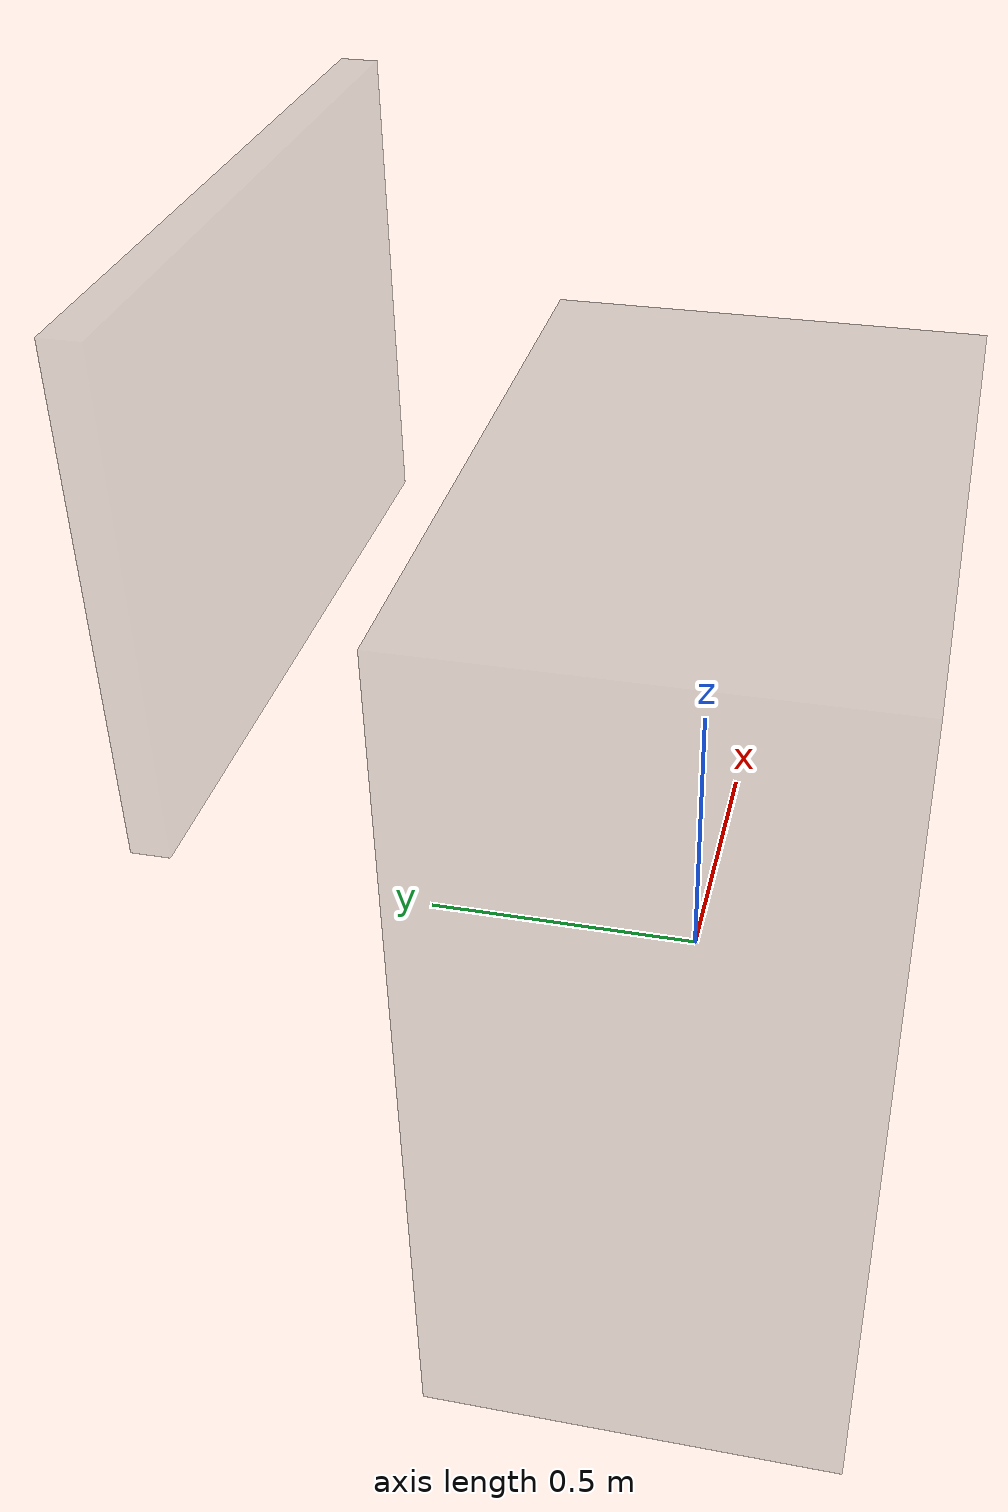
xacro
<?xml version="1.0"?>
<robot xmlns:xacro="http://www.ros.org/wiki/xacro">

    <!-- Test Bench Properties, Values in Meters-->
    <xacro:property name="bench_width" value="1.198"/>
    <xacro:property name="bench_depth" value=".7"/>
    <xacro:property name="bench_base_height" value=".804"/>
    <xacro:property name="bench_wall_height" value=".808"/>
    <xacro:property name="bench_wall_depth" value=".063"/>

    <xacro:property name="wheel_radius" value="0.0625"/>
    <xacro:property name="wheel_offset" value=".031"/>

    <!-- Base Link, this is our origin point for all test bench joints-->
    <link name="base_link">

    </link>

    <!-- Bench Footprint-->
    <link name="bench_footprint" type="fixed">
        <visual>
            <geometry>
                <box size="${bench_width} ${(bench_depth + bench_wall_depth)} ${(bench_base_height+bench_wall_height)}"/>
            </geometry>
            <material name="Grey">
                <color rgba=".1 .1 .1 .1"/>
            </material>
        </visual>
    </link>
    <link name="bench_wall" type="fixed">
        <visual>
            <geometry>
                <box size="${bench_width} ${bench_wall_depth} ${bench_wall_height}"/>
            </geometry>
            <material name="Grey">
                <color rgba=".1 .1 .1 .1"/>
            </material>
        </visual>
    </link>
    <joint name="bench_joint" type="fixed">
        <parent link="base_link"/>
        <child link="bench_footprint"/>
        <origin xyz="0.0 0.0 ${(wheel_radius*2+wheel_offset)}" rpy="0 0 0"/>
    </joint>
    <joint name="wall_joint" type="fixed">
        <parent link="bench_footprint"/>
        <child link="bench_wall"/>
        <origin xyz="0.0 ${(bench_depth+(bench_wall_depth/2))} ${bench_base_height}" rpy="0 0 0"/>
    </joint>
    <link name="zero_point" type="fixed">
    </link>
        <joint name="zero_joint" type="fixed">
        <parent link="bench_footprint"/>
        <child link="zero_point"/>
        <origin xyz="${(-bench_width/2)} ${(-(bench_depth + bench_wall_depth)/2)} ${bench_base_height}" rpy="0 0 0"/>
    </joint>

</robot>
